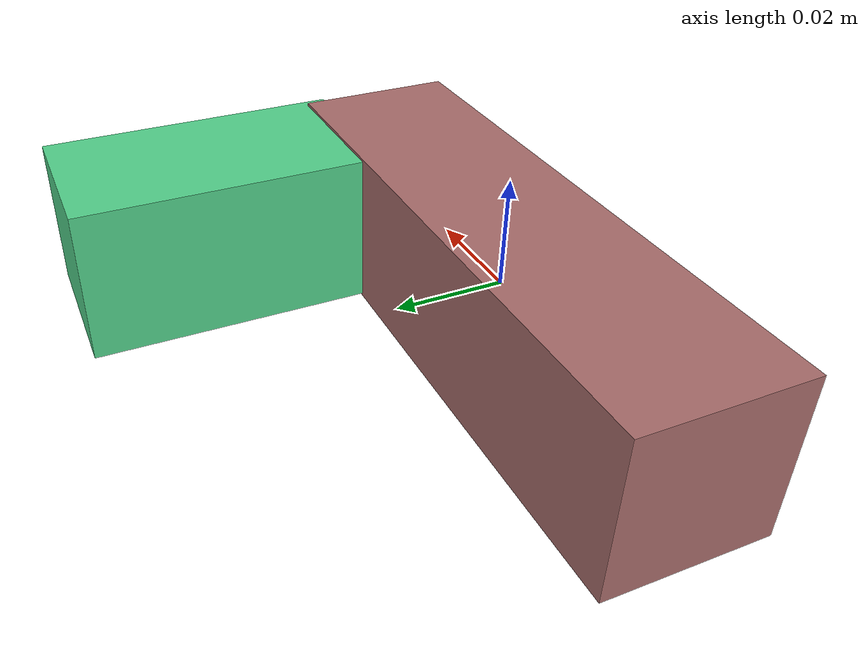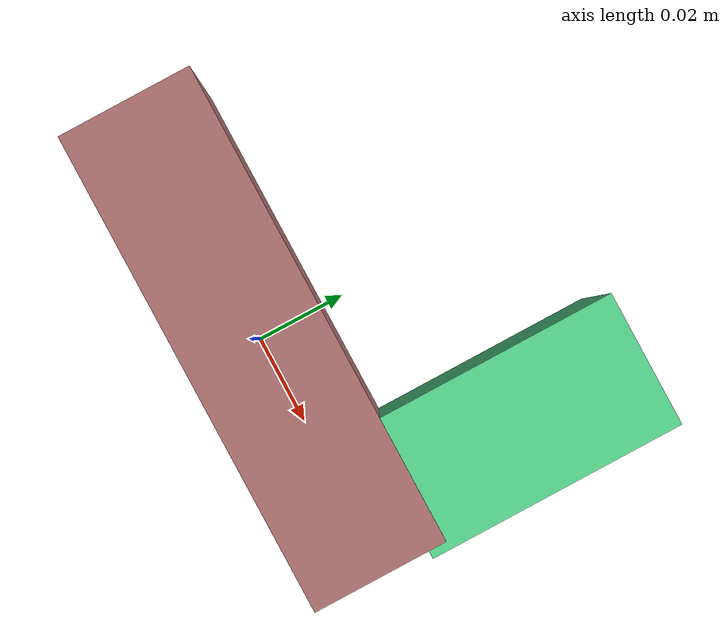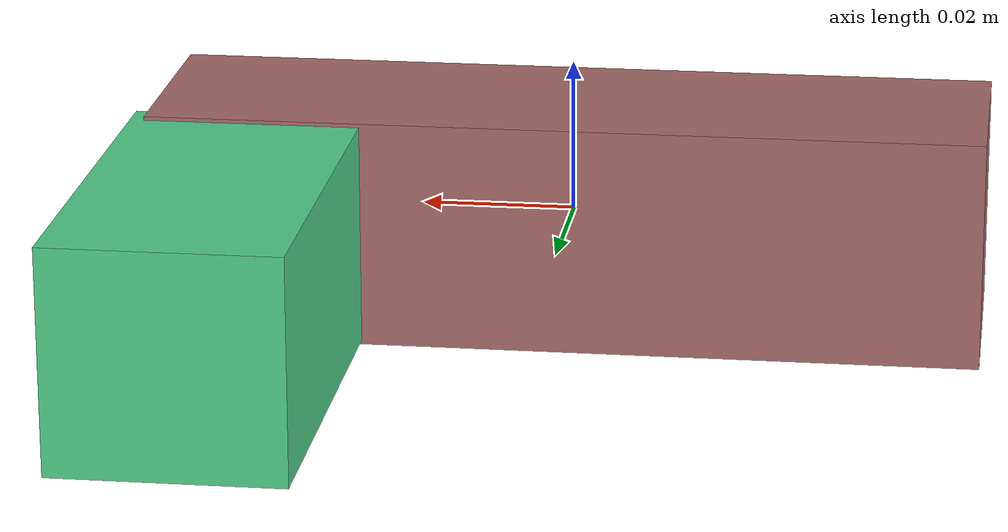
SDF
<sdf version="1.4"><world name="default"><model name="object0"><link name="link1"><pose>0 0 0 0 0 0</pose><inertial><pose>0 0 0 0 0 0</pose><mass>0.058629223012749296</mass><inertia><ixx>8.794383451912393e-06</ixx><ixy>0</ixy><iyy>6.199071542451823e-05</iyy><ixz>0</ixz><iyz>0</iyz><izz>6.199071542451823e-05</izz></inertia></inertial><visual name="link1_visual"><pose>0 0  0 0 0 0</pose><geometry><box><size>0.108572635208795 0.03 0.03</size></box></geometry><material><diffuse>0.6620947777702979 0.42575395549000306 0.42145673328842753 1</diffuse></material></visual><collision><pose>0 0  0 0 0 0</pose><geometry><box><size>0.108572635208795 0.03 0.03</size></box></geometry></collision></link><link name="link2"><pose>0.04114377036568732 0.039455427164096654 0 0 0 0</pose><inertial><pose>0 0 0 0 0 0</pose><mass>0.03073686885259674</mass><inertia><ixx>1.045284301915236e-05</ixx><ixy>0</ixy><iyy>4.459407389364243e-06</iyy><ixz>0</ixz><iyz>0</iyz><izz>1.0603965957677627e-05</izz></inertia></inertial><visual name="link2_visual"><pose>0 0  0 0 0 0</pose><geometry><box><size>0.03 0.05692012750480878 0.028999999999999998</size></box></geometry><material><diffuse>0.32569295353128064 0.8246641543006603 0.5489348406931948 1</diffuse></material></visual><collision><pose>0 0  0 0 0 0</pose><geometry><box><size>0.03 0.05692012750480878 0.028999999999999998</size></box></geometry></collision></link><joint name="link_joint_0" type="fixed"><parent>link1</parent><child>link2</child><pose>0 0 0 0 0 0</pose><axis><xyz>0 0 1</xyz></axis></joint></model></world></sdf>
